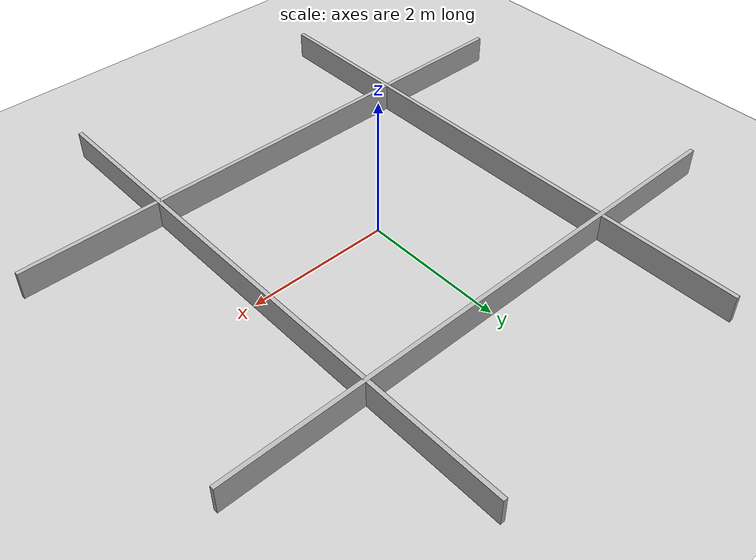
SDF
<?xml version='1.0'?>
<sdf version='1.7'>
  <world name='maze_world'>
    <light type='directional' name='sun'>
      <cast_shadows>true</cast_shadows>
      <pose>0 0 10 0 0 0</pose>
      <diffuse>0.8 0.8 0.8 1</diffuse>
      <specular>0.2 0.2 0.2 1</specular>
      <direction>-0.5 0.1 -0.9</direction>
    </light>
    <model name='ground'>
      <static>true</static>
      <link name='link'>
        <collision name='collision'>
          <geometry>
            <plane>
              <normal>0 0 1</normal>
              <size>16 16</size>
            </plane>
          </geometry>
        </collision>
        <visual name='visual'>
          <geometry>
            <plane>
              <normal>0 0 1</normal>
              <size>16 16</size>
            </plane>
          </geometry>
        </visual>
      </link>
    </model>
    <!-- Minimal placeholder walls (user can regenerate a richer maze and replace this file) -->
    <model name='maze'>
      <static>true</static>
      <link name='outer_north'>
        <pose>0 2.0 0.2 0 0 0</pose>
        <collision name='col'>
          <geometry><box><size>8.0 0.06 0.4</size></box></geometry>
        </collision>
        <visual name='vis'>
          <geometry><box><size>8.0 0.06 0.4</size></box></geometry>
        </visual>
      </link>
      <link name='outer_south'>
        <pose>0 -2.0 0.2 0 0 0</pose>
        <collision name='col'>
          <geometry><box><size>8.0 0.06 0.4</size></box></geometry>
        </collision>
        <visual name='vis'>
          <geometry><box><size>8.0 0.06 0.4</size></box></geometry>
        </visual>
      </link>
      <link name='outer_east'>
        <pose>2.0 0 0.2 0 0 1.5708</pose>
        <collision name='col'>
          <geometry><box><size>8.0 0.06 0.4</size></box></geometry>
        </collision>
        <visual name='vis'>
          <geometry><box><size>8.0 0.06 0.4</size></box></geometry>
        </visual>
      </link>
      <link name='outer_west'>
        <pose>-2.0 0 0.2 0 0 1.5708</pose>
        <collision name='col'>
          <geometry><box><size>8.0 0.06 0.4</size></box></geometry>
        </collision>
        <visual name='vis'>
          <geometry><box><size>8.0 0.06 0.4</size></box></geometry>
        </visual>
      </link>
    </model>
    <gui>
      <camera name='cam'>
        <pose>0 0 4 0 -0.75 0</pose>
      </camera>
    </gui>
  </world>
</sdf>
